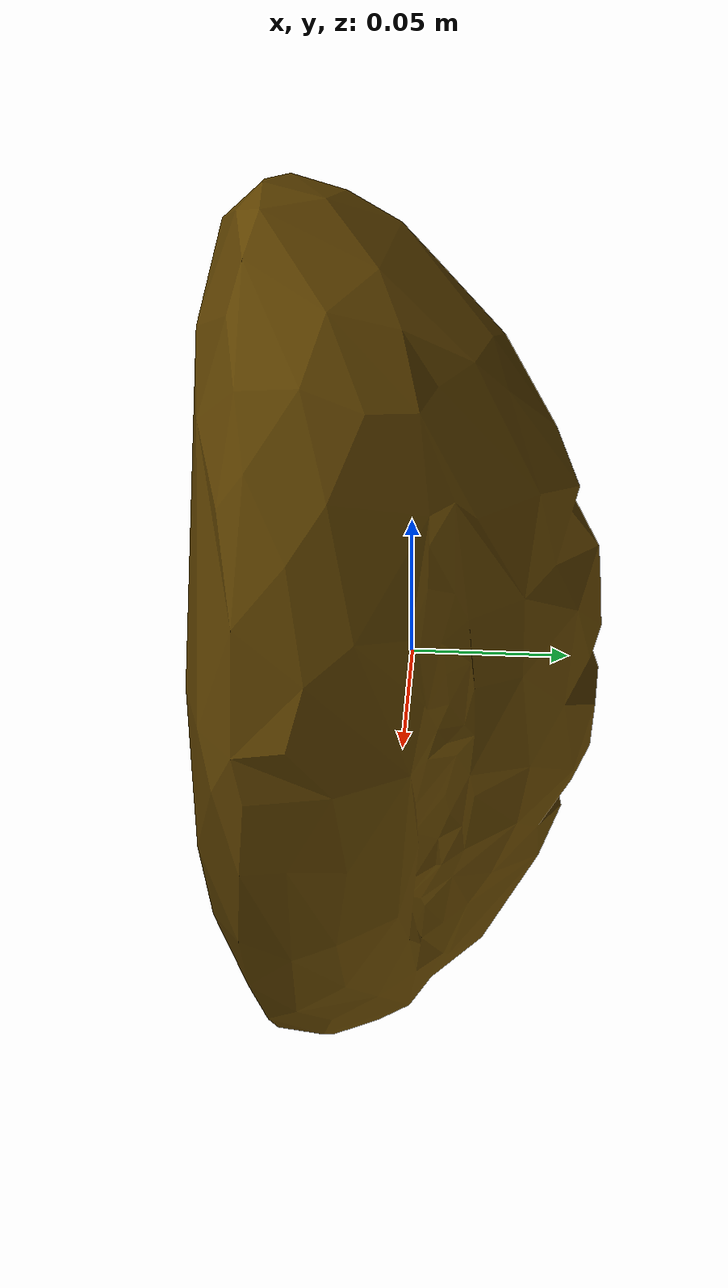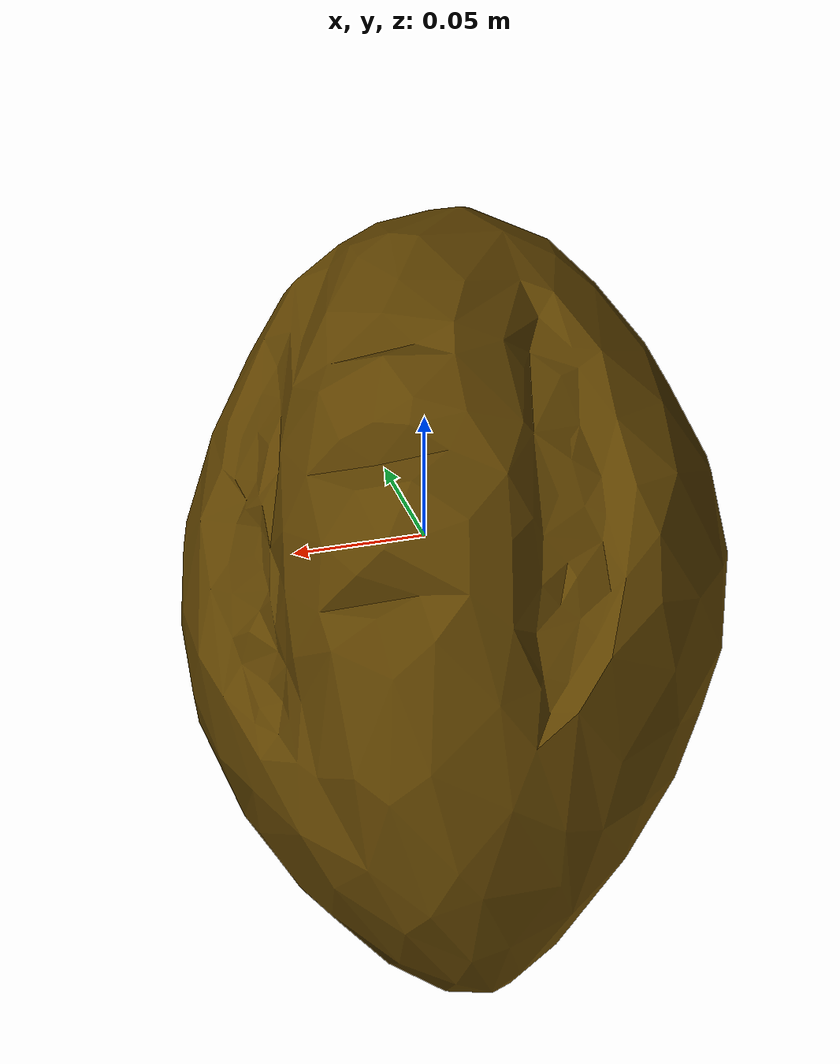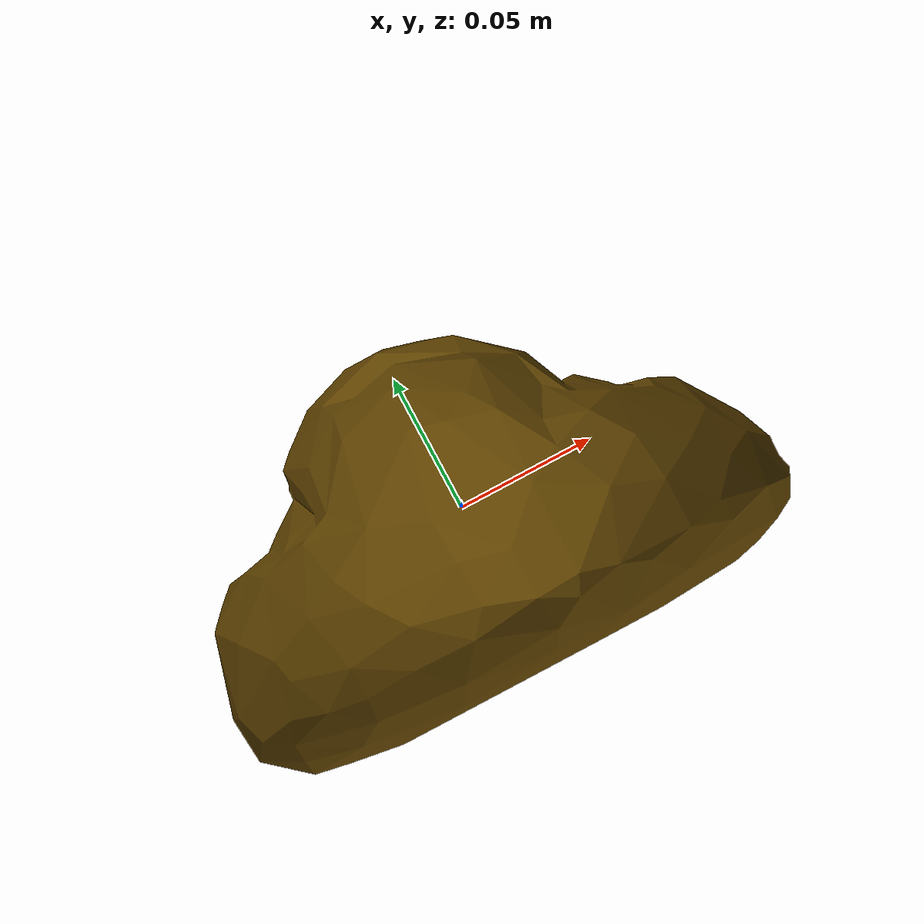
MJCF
<mujoco model="Bread_27">
  <compiler autolimits="true" boundmass="0.01" angle="radian"/>
  <default>
    <default class="/">
      <default class="__VISUAL_MJT__">
        <geom contype="0" conaffinity="0" group="0"/>
      </default>
      <default class="__STRUCTURAL_MJT__">
        <geom contype="8" conaffinity="15" group="4" friction="0.90000000000000002 0.90000000000000002 0.001" solref="0.025000000000000001 1" solimp="0.998 0.998 0.001"/>
      </default>
      <default class="__DYNAMIC_MJT__">
        <geom contype="1" conaffinity="15" group="4" friction="0.90000000000000002 0.90000000000000002 0.001" solref="0.025000000000000001 1" solimp="0.998 0.998 0.001"/>
      </default>
    </default>
  </default>
  <asset>
    <texture name="LoafBread_Mat3" type="2d" file="LoafBread_AlbedoTransparency.png"/>
    <material name="material_LoafBread_Mat3" class="/" texture="LoafBread_Mat3" specular="0.5" shininess="0.5" rgba="0.5 0.36206899999999997 0 1"/>
    <mesh name="Bread_27_loafbread_c_mesh" class="/" file="Bread_27_loafbread_c_mesh/Bread_27_loafbread_c_mesh.obj" scale="1 1 1"/>
  </asset>
  <worldbody>
    <body name="Bread_27">
      <joint name="Bread_27_free" class="/" type="free" pos="0 0 0" axis="0 0 1" stiffness="0" range="0 0" armature="0" damping="0.10000000000000001" frictionloss="0"/>
      <body name="Bread_27_loafbread_c_mesh" pos="-0.00069999999999999999 -0.018550000000000001 -0.0014" quat="1 0 0 0">
        <geom name="Bread_27_loafbread_c_mesh" class="__VISUAL_MJT__" type="mesh" material="material_LoafBread_Mat3" shellinertia="false" mesh="Bread_27_loafbread_c_mesh"/>
        <geom name="Bread_27_PrimitiveCollider_0" class="__DYNAMIC_MJT__" type="box" size="0.070648699998855591 0.041821669787168503 0.12952551245689392" rgba="0 1 0 1" pos="-0.003599999938160181 3.1281262636184692e-05 -0.00084635615348815918" quat="1 0 0 0"/>
        <geom name="Bread_27_PrimitiveCollider_1" class="__DYNAMIC_MJT__" type="box" size="0.066326238214969635 0.031564678996801376 0.15400415658950806" rgba="0 1 0 1" pos="-0.0035991668701171875 -0.010225709527730942 0.001399993896484375" quat="1 0 0 0"/>
        <geom name="Bread_27_PrimitiveCollider_2" class="__DYNAMIC_MJT__" type="capsule" size="0.053598135709762573 0.061351142823696136" rgba="0 1 0 1" pos="-0.0035991668701171875 0.026574112474918365 0.0014000199735164642" quat="0.99999999999891198 1.4751396607739272e-06 0 0"/>
        <geom name="Bread_27_PrimitiveCollider_3" class="__DYNAMIC_MJT__" type="box" size="0.10692533850669861 0.035117700695991516 0.10871214419603348" rgba="0 1 0 1" pos="-0.00070062302984297276 -0.0079483287408947945 0.001399993896484375" quat="1 0 0 0"/>
      </body>
    </body>
  </worldbody>
</mujoco>
